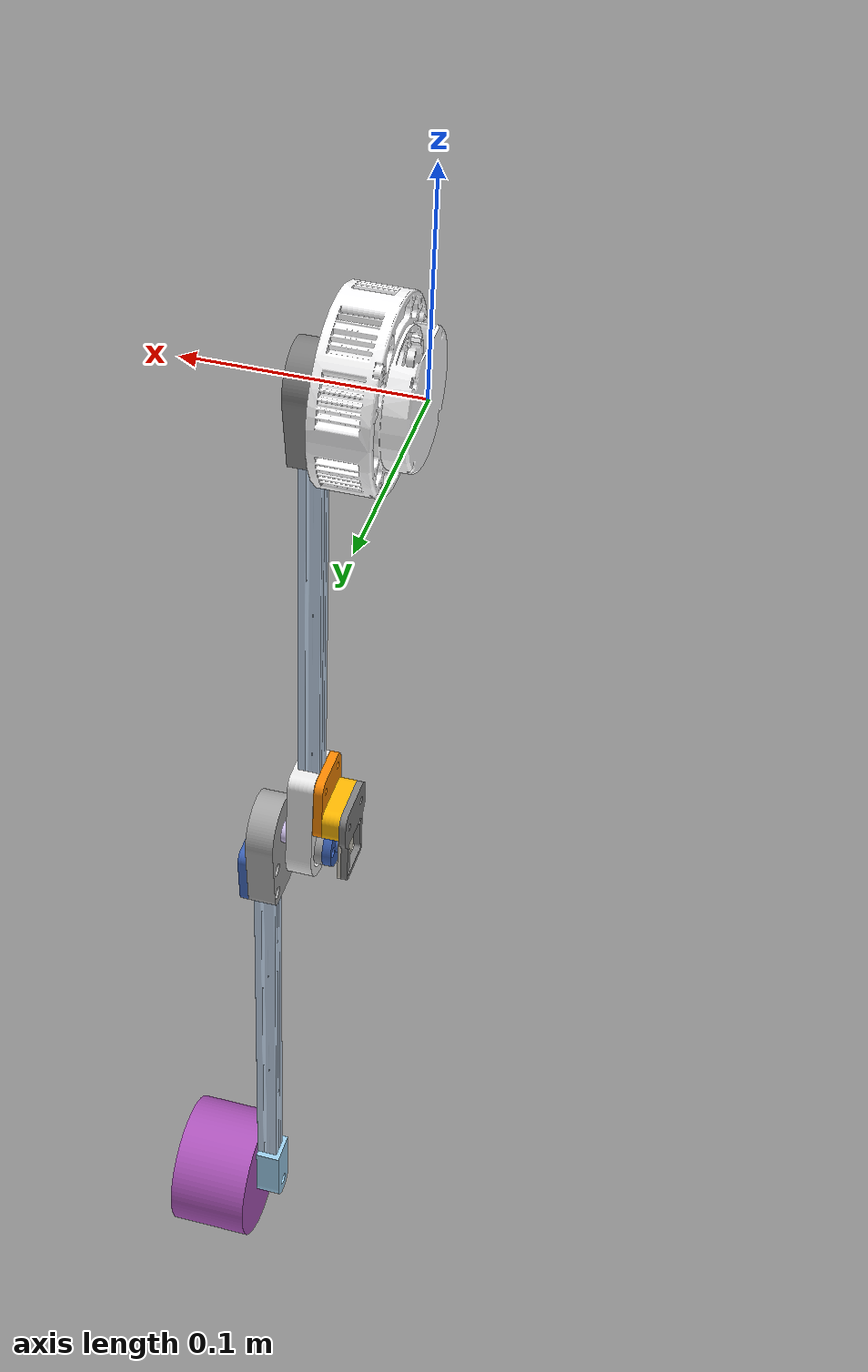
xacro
<?xml version="1.0" ?>

<!-- Generated using onshape-to-robot -->
<!-- Onshape https://cad.onshape.com/documents/aec25e004784a35842d8e9b0/w/78dcb336bdd3d929cd553c3a/e/ceb97de529eb41201314bd5a -->
<robot xmlns:xacro="http://www.ros.org/wiki/xacro" name="robot">
  <!-- Link housing -->
  <link name="housing">
    <inertial>
      <origin xyz="0.0237067 -0.000271186 -0.000185467" rpy="0 0 0"/>
      <mass value="0.195"/>
      <inertia ixx="0.000162348" ixy="-6.9347e-08" ixz="-7.13461e-07" iyy="9.45295e-05" iyz="3.4455e-08" izz="9.68641e-05"/>
    </inertial>
    <!-- Part housing -->
    <visual>
      <origin xyz="0 0 0" rpy="1.5708 0 -0"/>
      <geometry>
        <mesh filename="package://ros_pendulum/urdf/assets/housing.stl"/>
      </geometry>
      <material name="housing_material">
        <color rgba="0.996078 0.996078 1 1"/>
      </material>
    </visual>
    <collision>
      <origin xyz="0 0 0" rpy="1.5708 0 -0"/>
      <geometry>
        <mesh filename="package://ros_pendulum/urdf/assets/housing.stl"/>
      </geometry>
    </collision>
  </link>
  <!-- Link shaft -->
  <link name="shaft">
    <inertial>
      <origin xyz="0 0 0.00431706" rpy="0 0 0"/>
      <mass value="0.195"/>
      <inertia ixx="1.74278e-05" ixy="0" ixz="-0" iyy="1.74278e-05" iyz="0" izz="3.04938e-05"/>
    </inertial>
    <!-- Part shaft -->
    <visual>
      <origin xyz="-0 0 0.039" rpy="0 1.5708 0"/>
      <geometry>
        <mesh filename="package://ros_pendulum/urdf/assets/shaft.stl"/>
      </geometry>
      <material name="shaft_material">
        <color rgba="0.996078 0.996078 1 1"/>
      </material>
    </visual>
    <collision>
      <origin xyz="-0 0 0.039" rpy="0 1.5708 0"/>
      <geometry>
        <mesh filename="package://ros_pendulum/urdf/assets/shaft.stl"/>
      </geometry>
    </collision>
  </link>
  <!-- Link motor_handle -->
  <link name="motor_handle">
    <inertial>
      <origin xyz="0 0.153921 -0.00414835" rpy="0 0 0"/>
      <mass value="0.0902183"/>
      <inertia ixx="0.000797422" ixy="-0" ixz="-0" iyy="7.44487e-06" iyz="-9.946e-06" izz="0.000799332"/>
    </inertial>
    <!-- Part motor_handle -->
    <visual>
      <origin xyz="-0 -0 0.0437" rpy="-1.5708 1.5708 0"/>
      <geometry>
        <mesh filename="package://ros_pendulum/urdf/assets/motor_handle.stl"/>
      </geometry>
      <material name="motor_handle_material">
        <color rgba="0.498039 0.498039 0.498039 1"/>
      </material>
    </visual>
    <collision>
      <origin xyz="-0 -0 0.0437" rpy="-1.5708 1.5708 0"/>
      <geometry>
        <mesh filename="package://ros_pendulum/urdf/assets/motor_handle.stl"/>
      </geometry>
    </collision>
    <!-- Part bearing -->
    <visual>
      <origin xyz="0 0.241369 -0.0096" rpy="0 0 1.5708"/>
      <geometry>
        <mesh filename="package://ros_pendulum/urdf/assets/bearing.stl"/>
      </geometry>
      <material name="bearing_material">
        <color rgba="0.615686 0.811765 0.929412 1"/>
      </material>
    </visual>
    <collision>
      <origin xyz="0 0.241369 -0.0096" rpy="0 0 1.5708"/>
      <geometry>
        <mesh filename="package://ros_pendulum/urdf/assets/bearing.stl"/>
      </geometry>
    </collision>
    <!-- Part encoder_plate -->
    <visual>
      <origin xyz="0 0.241369 -0.0096" rpy="0 0 1.5708"/>
      <geometry>
        <mesh filename="package://ros_pendulum/urdf/assets/encoder_plate.stl"/>
      </geometry>
      <material name="encoder_plate_material">
        <color rgba="0.498039 0.498039 0.498039 1"/>
      </material>
    </visual>
    <collision>
      <origin xyz="0 0.241369 -0.0096" rpy="0 0 1.5708"/>
      <geometry>
        <mesh filename="package://ros_pendulum/urdf/assets/encoder_plate.stl"/>
      </geometry>
    </collision>
    <!-- Part fixed_handle -->
    <visual>
      <origin xyz="0 0.241369 -0.0096" rpy="0 0 1.5708"/>
      <geometry>
        <mesh filename="package://ros_pendulum/urdf/assets/fixed_handle.stl"/>
      </geometry>
      <material name="fixed_handle_material">
        <color rgba="0.917647 0.917647 0.917647 1"/>
      </material>
    </visual>
    <collision>
      <origin xyz="0 0.241369 -0.0096" rpy="0 0 1.5708"/>
      <geometry>
        <mesh filename="package://ros_pendulum/urdf/assets/fixed_handle.stl"/>
      </geometry>
    </collision>
    <!-- Part fixed_cap -->
    <visual>
      <origin xyz="0 0.241369 -0.0096" rpy="0 0 1.5708"/>
      <geometry>
        <mesh filename="package://ros_pendulum/urdf/assets/fixed_cap.stl"/>
      </geometry>
      <material name="fixed_cap_material">
        <color rgba="0.972549 0.529412 0.00392157 1"/>
      </material>
    </visual>
    <collision>
      <origin xyz="0 0.241369 -0.0096" rpy="0 0 1.5708"/>
      <geometry>
        <mesh filename="package://ros_pendulum/urdf/assets/fixed_cap.stl"/>
      </geometry>
    </collision>
    <!-- Part encoder_plate_spacer -->
    <visual>
      <origin xyz="0 0.241369 -0.0096" rpy="0 0 1.5708"/>
      <geometry>
        <mesh filename="package://ros_pendulum/urdf/assets/encoder_plate_spacer.stl"/>
      </geometry>
      <material name="encoder_plate_spacer_material">
        <color rgba="0.980392 0.713725 0.00392157 1"/>
      </material>
    </visual>
    <collision>
      <origin xyz="0 0.241369 -0.0096" rpy="0 0 1.5708"/>
      <geometry>
        <mesh filename="package://ros_pendulum/urdf/assets/encoder_plate_spacer.stl"/>
      </geometry>
    </collision>
    <!-- Part as5600_breakout_board -->
    <visual>
      <origin xyz="0 0.241369 -0.0096" rpy="0 0 1.5708"/>
      <geometry>
        <mesh filename="package://ros_pendulum/urdf/assets/as5600_breakout_board.stl"/>
      </geometry>
      <material name="as5600_breakout_board_material">
        <color rgba="0.819608 0.8 0.752941 1"/>
      </material>
    </visual>
    <collision>
      <origin xyz="0 0.241369 -0.0096" rpy="0 0 1.5708"/>
      <geometry>
        <mesh filename="package://ros_pendulum/urdf/assets/as5600_breakout_board.stl"/>
      </geometry>
    </collision>
    <!-- Part makerbeam_10mm -->
    <visual>
      <origin xyz="0 -0 0.0437" rpy="-1.5708 1.5708 0"/>
      <geometry>
        <mesh filename="package://ros_pendulum/urdf/assets/makerbeam_10mm.stl"/>
      </geometry>
      <material name="makerbeam_10mm_material">
        <color rgba="0.760784 0.839216 0.92549 1"/>
      </material>
    </visual>
    <collision>
      <origin xyz="0 -0 0.0437" rpy="-1.5708 1.5708 0"/>
      <geometry>
        <mesh filename="package://ros_pendulum/urdf/assets/makerbeam_10mm.stl"/>
      </geometry>
    </collision>
  </link>
  <!-- Link bearing_axe -->
  <link name="bearing_axe">
    <inertial>
      <origin xyz="0.0790606 8.91988e-06 0.0137513" rpy="0 0 0"/>
      <mass value="0.063435"/>
      <inertia ixx="6.66733e-06" ixy="3.7265e-08" ixz="-9.81805e-06" iyy="0.00046914" iyz="-1.189e-09" izz="0.000467602"/>
    </inertial>
    <!-- Part mobile_cap -->
    <visual>
      <origin xyz="0 0 0" rpy="3.14159 0 0"/>
      <geometry>
        <mesh filename="package://ros_pendulum/urdf/assets/mobile_cap.stl"/>
      </geometry>
      <material name="mobile_cap_material">
        <color rgba="0.231373 0.380392 0.705882 1"/>
      </material>
    </visual>
    <collision>
      <origin xyz="0 0 0" rpy="3.14159 0 0"/>
      <geometry>
        <mesh filename="package://ros_pendulum/urdf/assets/mobile_cap.stl"/>
      </geometry>
    </collision>
    <!-- Part mobile_handle -->
    <visual>
      <origin xyz="0 0 0" rpy="3.14159 0 0"/>
      <geometry>
        <mesh filename="package://ros_pendulum/urdf/assets/mobile_handle.stl"/>
      </geometry>
      <material name="mobile_handle_material">
        <color rgba="0.647059 0.647059 0.647059 1"/>
      </material>
    </visual>
    <collision>
      <origin xyz="0 0 0" rpy="3.14159 0 0"/>
      <geometry>
        <mesh filename="package://ros_pendulum/urdf/assets/mobile_handle.stl"/>
      </geometry>
    </collision>
    <!-- Part bearing_axe -->
    <visual>
      <origin xyz="0 0 0" rpy="3.14159 0 0"/>
      <geometry>
        <mesh filename="package://ros_pendulum/urdf/assets/bearing_axe.stl"/>
      </geometry>
      <material name="bearing_axe_material">
        <color rgba="0.647059 0.647059 0.647059 1"/>
      </material>
    </visual>
    <collision>
      <origin xyz="0 0 0" rpy="3.14159 0 0"/>
      <geometry>
        <mesh filename="package://ros_pendulum/urdf/assets/bearing_axe.stl"/>
      </geometry>
    </collision>
    <!-- Part makerbeam_10mm_2 -->
    <visual>
      <origin xyz="0.234 0 -0.0325" rpy="0 -1.5708 0"/>
      <geometry>
        <mesh filename="package://ros_pendulum/urdf/assets/makerbeam_10mm.stl"/>
      </geometry>
      <material name="makerbeam_10mm_2_material">
        <color rgba="0.760784 0.839216 0.92549 1"/>
      </material>
    </visual>
    <collision>
      <origin xyz="0.234 0 -0.0325" rpy="0 -1.5708 0"/>
      <geometry>
        <mesh filename="package://ros_pendulum/urdf/assets/makerbeam_10mm.stl"/>
      </geometry>
    </collision>
    <!-- Part mobile_spacer -->
    <visual>
      <origin xyz="0 0 0" rpy="3.14159 0 0"/>
      <geometry>
        <mesh filename="package://ros_pendulum/urdf/assets/mobile_spacer.stl"/>
      </geometry>
      <material name="mobile_spacer_material">
        <color rgba="0.8 0.74902 0.913725 1"/>
      </material>
    </visual>
    <collision>
      <origin xyz="0 0 0" rpy="3.14159 0 0"/>
      <geometry>
        <mesh filename="package://ros_pendulum/urdf/assets/mobile_spacer.stl"/>
      </geometry>
    </collision>
    <!-- Part magnet_stand -->
    <visual>
      <origin xyz="0 0 0" rpy="3.14159 0 0"/>
      <geometry>
        <mesh filename="package://ros_pendulum/urdf/assets/magnet_stand.stl"/>
      </geometry>
      <material name="magnet_stand_material">
        <color rgba="0.231373 0.380392 0.705882 1"/>
      </material>
    </visual>
    <collision>
      <origin xyz="0 0 0" rpy="3.14159 0 0"/>
      <geometry>
        <mesh filename="package://ros_pendulum/urdf/assets/magnet_stand.stl"/>
      </geometry>
    </collision>
    <!-- Part wheel_support -->
    <visual>
      <origin xyz="0.246 0 0.011" rpy="-0 -0 -1.5708"/>
      <geometry>
        <mesh filename="package://ros_pendulum/urdf/assets/wheel_support.stl"/>
      </geometry>
      <material name="wheel_support_material">
        <color rgba="0.615686 0.811765 0.929412 1"/>
      </material>
    </visual>
    <collision>
      <origin xyz="0.246 0 0.011" rpy="-0 -0 -1.5708"/>
      <geometry>
        <mesh filename="package://ros_pendulum/urdf/assets/wheel_support.stl"/>
      </geometry>
    </collision>
  </link>
  <!-- Link wheel -->
  <link name="wheel">
    <inertial>
      <origin xyz="0 -0 -0.0182091" rpy="0 0 0"/>
      <mass value="0.121"/>
      <inertia ixx="5.25074e-05" ixy="0" ixz="0" iyy="5.25074e-05" iyz="-0" izz="7.43868e-05"/>
    </inertial>
    <!-- Part wheel -->
    <visual>
      <origin xyz="0 0 0.0097" rpy="3.14159 0 -0"/>
      <geometry>
        <mesh filename="package://ros_pendulum/urdf/assets/wheel.stl"/>
      </geometry>
      <material name="wheel_material">
        <color rgba="0.682353 0.333333 0.737255 1"/>
      </material>
    </visual>
    <collision>
      <origin xyz="0 0 0.0097" rpy="3.14159 0 -0"/>
      <geometry>
        <mesh filename="package://ros_pendulum/urdf/assets/wheel.stl"/>
      </geometry>
    </collision>
  </link>
  <!-- Joint from bearing_axe to wheel -->
  <joint name="pole_to_wheel" type="fixed">
    <origin xyz="0.246 0 0.0207" rpy="3.14159 0 0"/>
    <parent link="bearing_axe"/>
    <child link="wheel"/>
    <axis xyz="0 0 1"/>
  </joint>
  <!-- Joint from motor_handle to bearing_axe -->
  <joint name="free_0" type="revolute">
    <origin xyz="0 0.241369 -0.0096" rpy="-3.14159 0 1.5708"/>
    <parent link="motor_handle"/>
    <child link="bearing_axe"/>
    <axis xyz="0 0 1"/>
    <limit lower="-100000.0" upper="100000.0" effort="100000.0" velocity="100000.0"/>

  </joint>
  <!-- Joint from shaft to motor_handle -->
  <joint name="shaft_to_mobile_handle" type="fixed">
    <origin xyz="-0 0 -0.0015" rpy="0 -0 1.5708"/>
    <parent link="shaft"/>
    <child link="motor_handle"/>
    <axis xyz="0 0 1"/>
  </joint>
  <!-- Joint from housing to shaft -->
  <joint name="gim6010" type="revolute">
    <origin xyz="0.039 -0 -0" rpy="-0 -1.5708 0"/>
    <parent link="housing"/>
    <child link="shaft"/>
    <axis xyz="0 0 1"/>
    <limit lower="-100000.0" upper="100000.0" effort="100000.0" velocity="100000.0"/>
  </joint>

  <xacro:include filename="odrive_control.xacro" />
  <xacro:odrive_control />

</robot>
